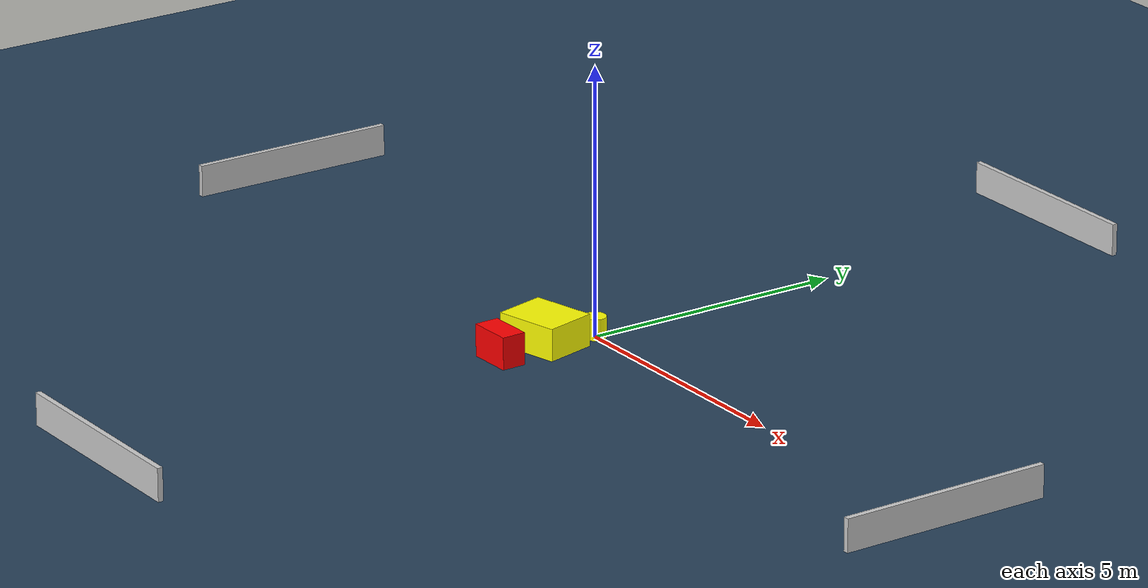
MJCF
<?xml version="1.0" ?>
<mujoco model="generated_environment">
  <option timestep="0.01" integrator="RK4" cone="elliptic"/>
  <default>
    <geom density="1"/>
  </default>
  <asset>
    <texture builtin="gradient" height="3072" name="skybox" rgb1="0.3 0.5 0.7" rgb2="0 0 0" type="skybox" width="512"/>
    <texture builtin="checker" height="300" name="groundplane" rgb1="0.2 0.3 0.4" rgb2="0.1 0.2 0.3" type="2d" width="300"/>
    <material name="groundplane" reflectance="0.2" texrepeat="5 5" texture="groundplane"/>
  </asset>
  <worldbody>
    <light dir="0 0 -1" directional="true" pos="0 0 1.5"/>
    <geom condim="3" friction="0.5 0.005 0.001" material="groundplane" name="floor" pos="0 0 0" size="0 0 0.05" type="plane"/>
    <body name="walls">
      <geom name="wall_1" condim="4" pos="-10.0 0.0 0.3" rgba="0.800000011920929 0.800000011920929 0.800000011920929 1.0" size="0.05 2.0 0.3" type="box"/>
      <geom name="wall_2" condim="4" pos="10.0 0.0 0.3" rgba="0.800000011920929 0.800000011920929 0.800000011920929 1.0" size="0.05 2.0 0.3" type="box"/>
      <geom name="wall_3" condim="4" pos="0.0 -10.0 0.3" rgba="0.800000011920929 0.800000011920929 0.800000011920929 1.0" size="2.0 0.05 0.3" type="box"/>
      <geom name="wall_4" condim="4" pos="0.0 10.0 0.3" rgba="0.800000011920929 0.800000011920929 0.800000011920929 1.0" size="2.0 0.05 0.3" type="box"/>
    </body>
    <body name="robot">
      <joint name="joint_x" type="slide" pos="0 0 0" axis="1 0 0"/>
      <joint name="joint_y" type="slide" pos="0 0 0" axis="0 1 0"/>
      <geom name="robot" type="cylinder" pos="0.0 0.0 0.2" size="0.2 0.2 0.0" mass="5.0" friction="1.0 0.005 0.0001" condim="4" rgba="1.0 1.0 0.0 1.0"/>
    </body>
    <body name="obstacle_1_movable">
      <geom name="obstacle_1_movable" condim="4" pos="-0.17691160217693858 -0.9405710159460179 0.3" euler="0 0 103.77422224327945" friction="0.0 0.005 0.001" rgba="1.0 1.0 0.0 1.0" size="0.49151973907922375 0.6059896532776037 0.3" type="box" mass="0.1"/>
      <joint type="free"/>
    </body>
    <body name="obstacle_2_static">
      <geom name="obstacle_2_static" condim="4" pos="-0.032725165223331965 -1.9728752869698896 0.3" euler="0 0 91.29262223191866" friction="0.0 0.005 0.001" rgba="1.0 0.0 0.0 1.0" size="0.2264161315537766 0.41388614921022543 0.3" type="box"/>
    </body>
  </worldbody>
  <actuator>
    <motor name="actuator_x" joint="joint_x" gear="1" ctrlrange="-1 1"/>
    <motor name="actuator_y" joint="joint_y" gear="1" ctrlrange="-1 1"/>
  </actuator>
</mujoco>
